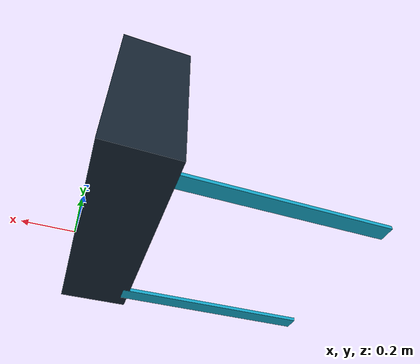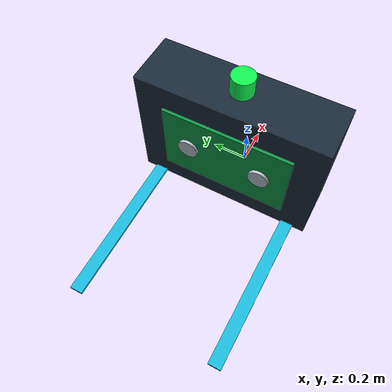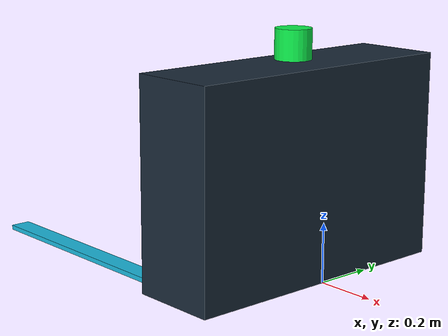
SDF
<?xml version="1.0"?>
<sdf version="1.9">
  <model name="docking_station">
    <static>true</static>
    <link name="link">
      <collision name="collision">
        <pose>-0.15 0 0.35 0 0 0</pose>
        <geometry><box><size>0.3 1.0 0.7</size></box></geometry>
      </collision>
      <visual name="body">
        <pose>-0.15 0 0.35 0 0 0</pose>
        <geometry><box><size>0.30 1.0 0.70</size></box></geometry>
        <material><diffuse>0.10 0.16 0.22 1</diffuse><pbr><metal><roughness>0.35</roughness></metal></pbr></material>
      </visual>
      <visual name="charging_face">
        <pose>-0.306 0 0.35 0 0 0</pose>
        <geometry><box><size>0.02 0.70 0.42</size></box></geometry>
        <material><diffuse>0.05 0.60 0.28 1</diffuse><emissive>0.01 0.12 0.04 1</emissive></material>
      </visual>
      <visual name="contact_left">
        <pose>-0.32 -0.20 0.35 0 1.5708 0</pose>
        <geometry><cylinder><radius>0.055</radius><length>0.025</length></cylinder></geometry>
        <material><diffuse>0.72 0.76 0.80 1</diffuse><pbr><metal><roughness>0.18</roughness></metal></pbr></material>
      </visual>
      <visual name="contact_right">
        <pose>-0.32 0.20 0.35 0 1.5708 0</pose>
        <geometry><cylinder><radius>0.055</radius><length>0.025</length></cylinder></geometry>
        <material><diffuse>0.72 0.76 0.80 1</diffuse><pbr><metal><roughness>0.18</roughness></metal></pbr></material>
      </visual>
      <visual name="status_light">
        <pose>-0.15 0 0.76 0 0 0</pose>
        <geometry><cylinder><radius>0.06</radius><length>0.10</length></cylinder></geometry>
        <material><diffuse>0.05 0.95 0.30 1</diffuse><emissive>0.02 0.55 0.08 1</emissive></material>
      </visual>
      <visual name="guide_left"><pose>-0.72 -0.40 0.008 0 0 0</pose><geometry><box><size>0.90 0.07 0.016</size></box></geometry><material><diffuse>0.10 0.72 0.86 1</diffuse></material></visual>
      <visual name="guide_right"><pose>-0.72 0.40 0.008 0 0 0</pose><geometry><box><size>0.90 0.07 0.016</size></box></geometry><material><diffuse>0.10 0.72 0.86 1</diffuse></material></visual>
    </link>
  </model>
</sdf>
